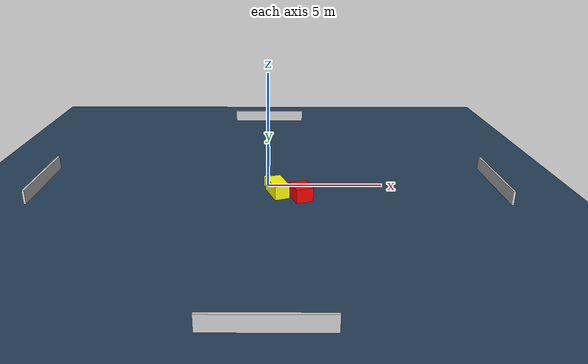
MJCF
<?xml version="1.0" ?>
<mujoco model="generated_environment">
  <option timestep="0.01" integrator="RK4" cone="elliptic"/>
  <default>
    <geom density="1"/>
  </default>
  <asset>
    <texture builtin="gradient" height="3072" name="skybox" rgb1="0.3 0.5 0.7" rgb2="0 0 0" type="skybox" width="512"/>
    <texture builtin="checker" height="300" name="groundplane" rgb1="0.2 0.3 0.4" rgb2="0.1 0.2 0.3" type="2d" width="300"/>
    <material name="groundplane" reflectance="0.2" texrepeat="5 5" texture="groundplane"/>
  </asset>
  <worldbody>
    <light dir="0 0 -1" directional="true" pos="0 0 1.5"/>
    <geom condim="3" friction="0.5 0.005 0.001" material="groundplane" name="floor" pos="0 0 0" size="0 0 0.05" type="plane"/>
    <body name="walls">
      <geom name="wall_1" condim="4" pos="-10.0 0.0 0.3" rgba="0.800000011920929 0.800000011920929 0.800000011920929 1.0" size="0.05 2.0 0.3" type="box"/>
      <geom name="wall_2" condim="4" pos="10.0 0.0 0.3" rgba="0.800000011920929 0.800000011920929 0.800000011920929 1.0" size="0.05 2.0 0.3" type="box"/>
      <geom name="wall_3" condim="4" pos="0.0 -10.0 0.3" rgba="0.800000011920929 0.800000011920929 0.800000011920929 1.0" size="2.0 0.05 0.3" type="box"/>
      <geom name="wall_4" condim="4" pos="0.0 10.0 0.3" rgba="0.800000011920929 0.800000011920929 0.800000011920929 1.0" size="2.0 0.05 0.3" type="box"/>
    </body>
    <body name="robot">
      <joint name="joint_x" type="slide" pos="0 0 0" axis="1 0 0"/>
      <joint name="joint_y" type="slide" pos="0 0 0" axis="0 1 0"/>
      <geom name="robot" type="cylinder" pos="0.0 0.0 0.2" size="0.2 0.2 0.0" mass="5.0" friction="1.0 0.005 0.0001" condim="4" rgba="1.0 1.0 0.0 1.0"/>
    </body>
    <body name="obstacle_1_movable">
      <geom name="obstacle_1_movable" condim="4" pos="0.39348120914937423 -0.9231091052570117 0.3" euler="0 0 199.2210083477648" friction="0.0 0.005 0.001" rgba="1.0 1.0 0.0 1.0" size="0.3273837644185278 0.5981915491141698 0.3" type="box" mass="0.1"/>
      <joint type="free"/>
    </body>
    <body name="obstacle_2_static">
      <geom name="obstacle_2_static" condim="4" pos="1.3834902151012463 -1.3864365705168042 0.3" euler="0 0 197.7608963994056" friction="0.0 0.005 0.001" rgba="1.0 0.0 0.0 1.0" size="0.3713515531185058 0.43137317333797287 0.3" type="box"/>
    </body>
  </worldbody>
  <actuator>
    <motor name="actuator_x" joint="joint_x" gear="1" ctrlrange="-1 1"/>
    <motor name="actuator_y" joint="joint_y" gear="1" ctrlrange="-1 1"/>
  </actuator>
</mujoco>
